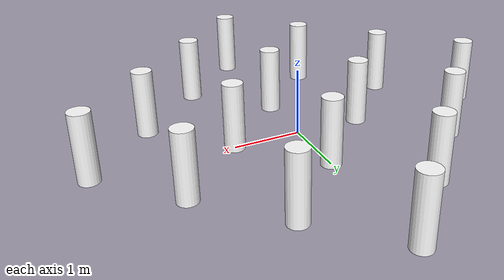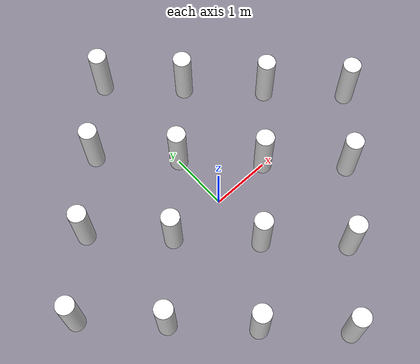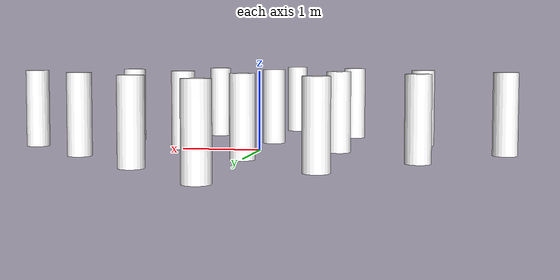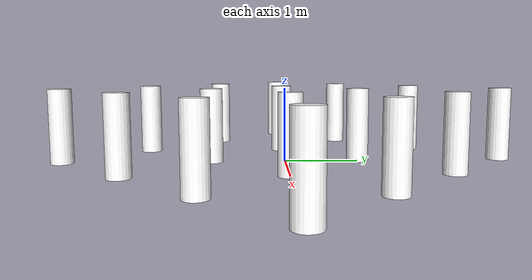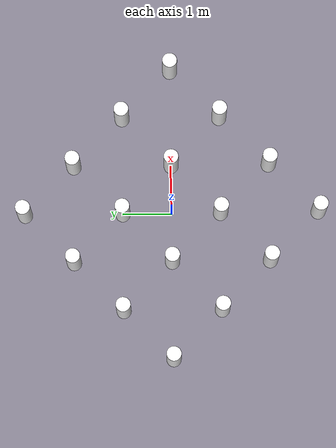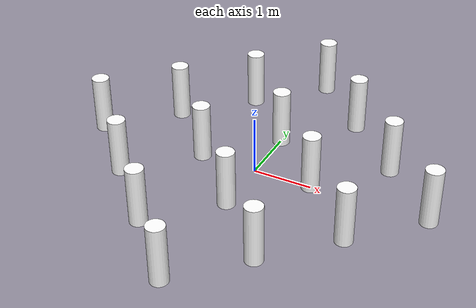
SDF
<?xml version='1.0'?>
<sdf version='1.6'>
  <model name='Cylinder_set_16'>
    <static>true</static>

    <!-- 柱子按照指定坐标分布：(±3,0), (0,±3), (±1,0), (0,±1), (±1,±2), (±2,±1) -->

    <link name='cyl_3_0'>
      <pose>3.0 0.0 0.5 0 0 0</pose>
      <collision name='col'><geometry><cylinder><radius>0.15</radius><length>1.0</length></cylinder></geometry></collision>
      <visual name='vis'><geometry><cylinder><radius>0.15</radius><length>1.0</length></cylinder></geometry><material><ambient>1 1 1 1</ambient><diffuse>1 1 1 1</diffuse></material></visual>
    </link>
    <link name='cyl_n3_0'>
      <pose>-3.0 0.0 0.5 0 0 0</pose>
      <collision name='col'><geometry><cylinder><radius>0.15</radius><length>1.0</length></cylinder></geometry></collision>
      <visual name='vis'><geometry><cylinder><radius>0.15</radius><length>1.0</length></cylinder></geometry><material><ambient>1 1 1 1</ambient><diffuse>1 1 1 1</diffuse></material></visual>
    </link>

    <link name='cyl_0_3'>
      <pose>0.0 3.0 0.5 0 0 0</pose>
      <collision name='col'><geometry><cylinder><radius>0.15</radius><length>1.0</length></cylinder></geometry></collision>
      <visual name='vis'><geometry><cylinder><radius>0.15</radius><length>1.0</length></cylinder></geometry><material><ambient>1 1 1 1</ambient><diffuse>1 1 1 1</diffuse></material></visual>
    </link>
    <link name='cyl_0_n3'>
      <pose>0.0 -3.0 0.5 0 0 0</pose>
      <collision name='col'><geometry><cylinder><radius>0.15</radius><length>1.0</length></cylinder></geometry></collision>
      <visual name='vis'><geometry><cylinder><radius>0.15</radius><length>1.0</length></cylinder></geometry><material><ambient>1 1 1 1</ambient><diffuse>1 1 1 1</diffuse></material></visual>
    </link>

    <link name='cyl_1_0'>
      <pose>1.0 0.0 0.5 0 0 0</pose>
      <collision name='col'><geometry><cylinder><radius>0.15</radius><length>1.0</length></cylinder></geometry></collision>
      <visual name='vis'><geometry><cylinder><radius>0.15</radius><length>1.0</length></cylinder></geometry><material><ambient>1 1 1 1</ambient><diffuse>1 1 1 1</diffuse></material></visual>
    </link>
    <link name='cyl_n1_0'>
      <pose>-1.0 0.0 0.5 0 0 0</pose>
      <collision name='col'><geometry><cylinder><radius>0.15</radius><length>1.0</length></cylinder></geometry></collision>
      <visual name='vis'><geometry><cylinder><radius>0.15</radius><length>1.0</length></cylinder></geometry><material><ambient>1 1 1 1</ambient><diffuse>1 1 1 1</diffuse></material></visual>
    </link>

    <link name='cyl_0_1'>
      <pose>0.0 1.0 0.5 0 0 0</pose>
      <collision name='col'><geometry><cylinder><radius>0.15</radius><length>1.0</length></cylinder></geometry></collision>
      <visual name='vis'><geometry><cylinder><radius>0.15</radius><length>1.0</length></cylinder></geometry><material><ambient>1 1 1 1</ambient><diffuse>1 1 1 1</diffuse></material></visual>
    </link>
    <link name='cyl_0_n1'>
      <pose>0.0 -1.0 0.5 0 0 0</pose>
      <collision name='col'><geometry><cylinder><radius>0.15</radius><length>1.0</length></cylinder></geometry></collision>
      <visual name='vis'><geometry><cylinder><radius>0.15</radius><length>1.0</length></cylinder></geometry><material><ambient>1 1 1 1</ambient><diffuse>1 1 1 1</diffuse></material></visual>
    </link>

    <link name='cyl_1_2'>
      <pose>1.0 2.0 0.5 0 0 0</pose>
      <collision name='col'><geometry><cylinder><radius>0.15</radius><length>1.0</length></cylinder></geometry></collision>
      <visual name='vis'><geometry><cylinder><radius>0.15</radius><length>1.0</length></cylinder></geometry><material><ambient>1 1 1 1</ambient><diffuse>1 1 1 1</diffuse></material></visual>
    </link>
    <link name='cyl_1_n2'>
      <pose>1.0 -2.0 0.5 0 0 0</pose>
      <collision name='col'><geometry><cylinder><radius>0.15</radius><length>1.0</length></cylinder></geometry></collision>
      <visual name='vis'><geometry><cylinder><radius>0.15</radius><length>1.0</length></cylinder></geometry><material><ambient>1 1 1 1</ambient><diffuse>1 1 1 1</diffuse></material></visual>
    </link>
    <link name='cyl_n1_2'>
      <pose>-1.0 2.0 0.5 0 0 0</pose>
      <collision name='col'><geometry><cylinder><radius>0.15</radius><length>1.0</length></cylinder></geometry></collision>
      <visual name='vis'><geometry><cylinder><radius>0.15</radius><length>1.0</length></cylinder></geometry><material><ambient>1 1 1 1</ambient><diffuse>1 1 1 1</diffuse></material></visual>
    </link>
    <link name='cyl_n1_n2'>
      <pose>-1.0 -2.0 0.5 0 0 0</pose>
      <collision name='col'><geometry><cylinder><radius>0.15</radius><length>1.0</length></cylinder></geometry></collision>
      <visual name='vis'><geometry><cylinder><radius>0.15</radius><length>1.0</length></cylinder></geometry><material><ambient>1 1 1 1</ambient><diffuse>1 1 1 1</diffuse></material></visual>
    </link>

    <link name='cyl_2_1'>
      <pose>2.0 1.0 0.5 0 0 0</pose>
      <collision name='col'><geometry><cylinder><radius>0.15</radius><length>1.0</length></cylinder></geometry></collision>
      <visual name='vis'><geometry><cylinder><radius>0.15</radius><length>1.0</length></cylinder></geometry><material><ambient>1 1 1 1</ambient><diffuse>1 1 1 1</diffuse></material></visual>
    </link>
    <link name='cyl_2_n1'>
      <pose>2.0 -1.0 0.5 0 0 0</pose>
      <collision name='col'><geometry><cylinder><radius>0.15</radius><length>1.0</length></cylinder></geometry></collision>
      <visual name='vis'><geometry><cylinder><radius>0.15</radius><length>1.0</length></cylinder></geometry><material><ambient>1 1 1 1</ambient><diffuse>1 1 1 1</diffuse></material></visual>
    </link>
    <link name='cyl_n2_1'>
      <pose>-2.0 1.0 0.5 0 0 0</pose>
      <collision name='col'><geometry><cylinder><radius>0.15</radius><length>1.0</length></cylinder></geometry></collision>
      <visual name='vis'><geometry><cylinder><radius>0.15</radius><length>1.0</length></cylinder></geometry><material><ambient>1 1 1 1</ambient><diffuse>1 1 1 1</diffuse></material></visual>
    </link>
    <link name='cyl_n2_n1'>
      <pose>-2.0 -1.0 0.5 0 0 0</pose>
      <collision name='col'><geometry><cylinder><radius>0.15</radius><length>1.0</length></cylinder></geometry></collision>
      <visual name='vis'><geometry><cylinder><radius>0.15</radius><length>1.0</length></cylinder></geometry><material><ambient>1 1 1 1</ambient><diffuse>1 1 1 1</diffuse></material></visual>
    </link>

  </model>
</sdf>
